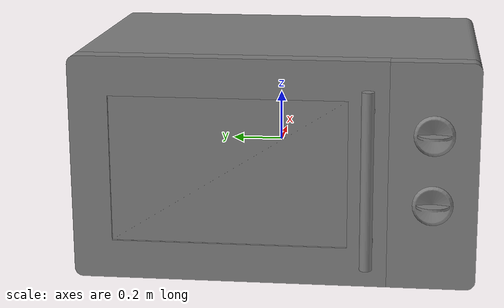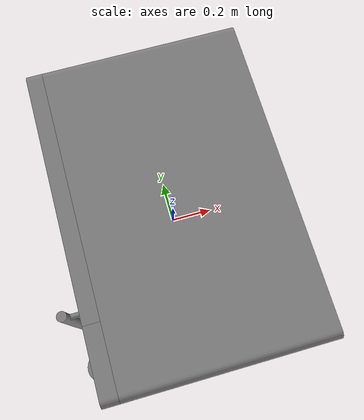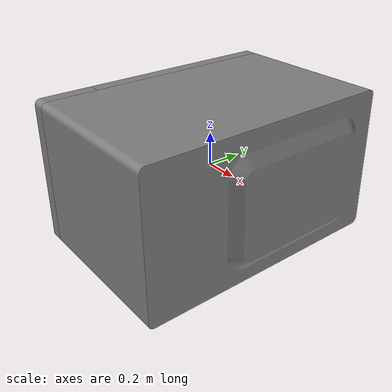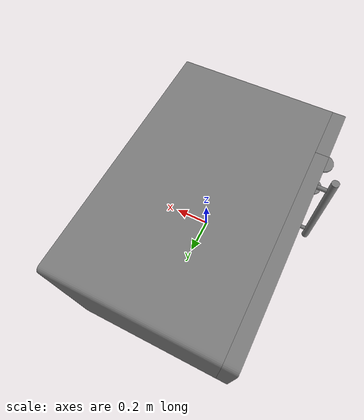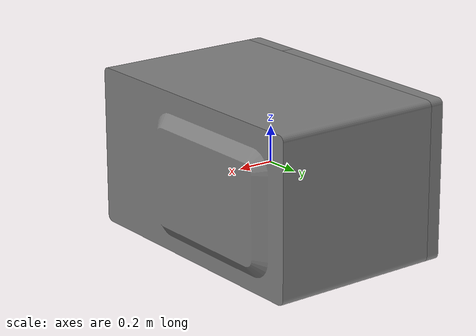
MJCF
<mujoco model="partnet_dc5c91c8c01b1c8c506c648223cdabe9">
    <compiler angle="radian" />
    <size njmax="500" nconmax="100" />
    <asset>
        <mesh name="original-12" file="original-12.stl" />
        <mesh name="original-7" file="original-7.stl" />
        <mesh name="original-9" file="original-9.stl" />
        <mesh name="original-11" file="original-11.stl" />
        <mesh name="original-10" file="original-10.stl" />
        <mesh name="original-4" file="original-4.stl" />
        <mesh name="original-3" file="original-3.stl" />
        <mesh name="original-5" file="original-5.stl" />
        <mesh name="new-4" file="new-4.stl" />
        <mesh name="new-3" file="new-3.stl" />
        <mesh name="new-2" file="new-2.stl" />
        <mesh name="new-1" file="new-1.stl" />
        <mesh name="new-0" file="new-0.stl" />
    </asset>
    <worldbody>
    <body>
        <body name="object">
            <geom quat="0.5 0.5 -0.5 -0.5" type="mesh" group="0"  mesh="original-5" conaffinity="0" contype="0"/>
            <geom quat="0.5 0.5 -0.5 -0.5" type="mesh" group="0"  mesh="new-4" conaffinity="0" contype="0"/>
            <geom quat="0.5 0.5 -0.5 -0.5" type="mesh" group="0"  mesh="new-3" conaffinity="0" contype="0"/>
            <geom quat="0.5 0.5 -0.5 -0.5" type="mesh" group="0"  mesh="new-2" conaffinity="0" contype="0"/>
            <geom quat="0.5 0.5 -0.5 -0.5" type="mesh" group="0"  mesh="new-1" conaffinity="0" contype="0"/>
            <geom quat="0.5 0.5 -0.5 -0.5" type="mesh" group="0"  mesh="new-0" conaffinity="0" contype="0"/>
            <body name="link_0" pos="-0.422377 0.722522 0.435315" quat="0.5 0.5 -0.5 -0.5">
                <inertial pos="0.578158 -0.440008 0.045937" quat="0.000151834 0.70444 -5.77531e-05 0.709764" mass="88.1961" diaginertia="15.7799 10.5248 5.40535" />
                <joint name="joint_0" pos="0 0 0" axis="0 -1 0" limited="true" range="0 1.5708" />
                <geom pos="0.722522 -0.435315 -0.422377" type="mesh" group="0"  mesh="original-12" />
                <geom pos="0.722522 -0.435315 -0.422377" type="mesh" group="0"  mesh="original-7" />
                <geom pos="0.722522 -0.435315 -0.422377" type="mesh" group="0"  mesh="original-9" name="panel" />
                <geom pos="0.722522 -0.435315 -0.422377" type="mesh" group="0"  mesh="original-11" />
                <geom pos="0.722522 -0.435315 -0.422377" type="mesh" group="0"  mesh="original-10" />
            </body>
            <body name="link_1" pos="-0.576265 -0.629274 -0.113024" quat="0.5 0.5 -0.5 -0.5">
                <inertial pos="-0.00319601 8.68521e-05 -0.048853" quat="0 0.707107 0 0.707107" mass="0.481512" diaginertia="0.000936918 0.00059046 0.000484734" />
                <joint name="joint_1" pos="0 0 0" axis="0 0 1" />
                <geom pos="-0.629274 0.113024 -0.576265" type="mesh" group="0"  mesh="original-4" />
            </body>
            <body name="link_2" pos="-0.57378 -0.627714 0.156373" quat="0.5 0.5 -0.5 -0.5">
                <inertial pos="-0.00163601 0.00143201 -0.0463677" quat="0 0.707107 0 0.707107" mass="0.481513" diaginertia="0.000936919 0.00059046 0.000484735" />
                <joint name="joint_2" pos="0 0 0" axis="0 0 1" />
                <geom pos="-0.627714 -0.156373 -0.57378" type="mesh" group="0"  mesh="original-3" />
            </body>
        </body>
    <site name="bottom_site" pos="0 0 -0.3" rgba="0 0 0 0" size="0.005"/>
    <site name="top_site" pos="0 0 0.3" rgba="0 0 0 0" size="0.005"/>
    <site name="horizontal_radius_site" pos="0.3 0 0" rgba="0 0 0 0" size="0.1"/>
    </body>
    </worldbody>
</mujoco>
